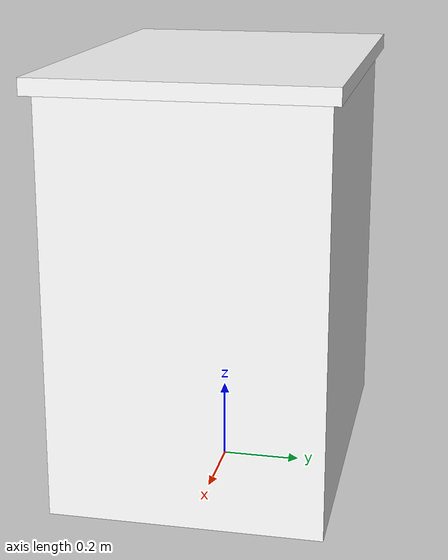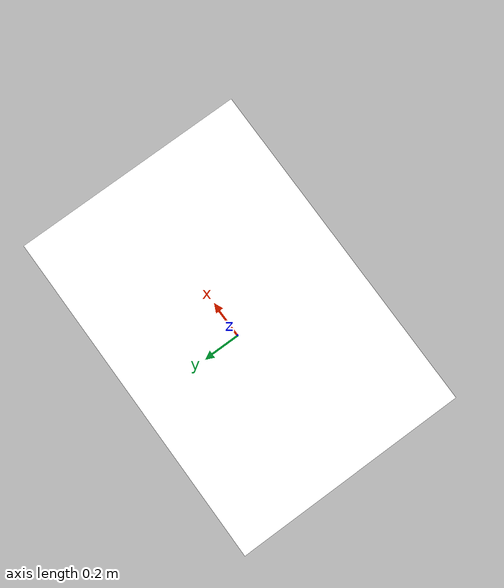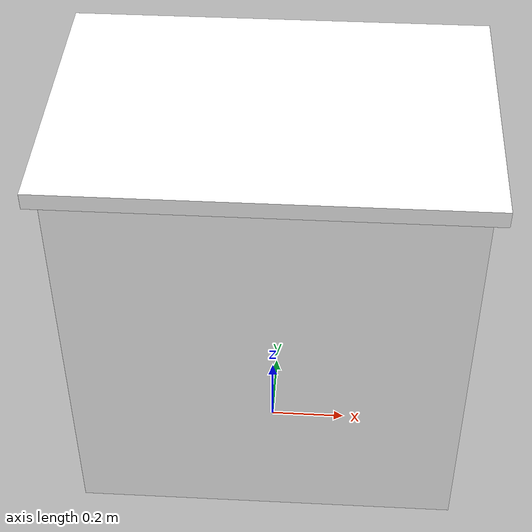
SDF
<?xml version="1.0"?>
<sdf version="1.9">
  <model name="dresser">
    <static>true</static>
    <link name="body">

      <collision name="dresser_collision">
        <pose>0 0 0.55 0 0 0</pose>
        <geometry><box><size>0.96 0.66 1.04</size></box></geometry>
      </collision>
      <collision name="top_cap_collision">
        <pose>0 0 1.06 0 0 0</pose>
        <geometry><box><size>1.02 0.70 0.04</size></box></geometry>
      </collision>
      <visual name="dresser_visual">
        <pose>0 0 0.55 0 0 0</pose>
        <geometry><box><size>0.96 0.66 1.04</size></box></geometry>
        <material>
          <ambient>1 1 1 1</ambient>
          <diffuse>1 1 1 1</diffuse>
          <specular>0.05 0.05 0.05 1</specular>
          <pbr>
            <metal>
              <albedo_map>materials/textures/wood_albedo.jpg</albedo_map>
              <normal_map>materials/textures/wood_normal.jpg</normal_map>
              <roughness_map>materials/textures/wood_roughness.jpg</roughness_map>
              <metalness>0.0</metalness>
            </metal>
          </pbr>
        </material>
      </visual>

      <visual name="top_cap">
        <pose>0 0 1.06 0 0 0</pose>
        <geometry><box><size>1.02 0.70 0.04</size></box></geometry>
        <material><ambient>1 1 1 1</ambient><diffuse>1 1 1 1</diffuse><specular>0.05 0.05 0.05 1</specular><pbr><metal><albedo_map>materials/textures/wood_albedo.jpg</albedo_map><normal_map>materials/textures/wood_normal.jpg</normal_map><roughness_map>materials/textures/wood_roughness.jpg</roughness_map><metalness>0.0</metalness></metal></pbr></material>
      </visual>

      <visual name="drawer_1">
        <pose>0.45 0 0.84 0 0 0</pose>
        <geometry><box><size>0.03 0.54 0.15</size></box></geometry>
        <material><ambient>1 1 1 1</ambient><diffuse>1 1 1 1</diffuse><specular>0.05 0.05 0.05 1</specular><pbr><metal><albedo_map>materials/textures/wood_albedo.jpg</albedo_map><normal_map>materials/textures/wood_normal.jpg</normal_map><roughness_map>materials/textures/wood_roughness.jpg</roughness_map><metalness>0.0</metalness></metal></pbr></material>
      </visual>
      <visual name="drawer_2">
        <pose>0.45 0 0.60 0 0 0</pose>
        <geometry><box><size>0.03 0.54 0.15</size></box></geometry>
        <material><ambient>1 1 1 1</ambient><diffuse>1 1 1 1</diffuse><specular>0.05 0.05 0.05 1</specular><pbr><metal><albedo_map>materials/textures/wood_albedo.jpg</albedo_map><normal_map>materials/textures/wood_normal.jpg</normal_map><roughness_map>materials/textures/wood_roughness.jpg</roughness_map><metalness>0.0</metalness></metal></pbr></material>
      </visual>
      <visual name="drawer_3">
        <pose>0.45 0 0.36 0 0 0</pose>
        <geometry><box><size>0.03 0.54 0.15</size></box></geometry>
        <material><ambient>1 1 1 1</ambient><diffuse>1 1 1 1</diffuse><specular>0.05 0.05 0.05 1</specular><pbr><metal><albedo_map>materials/textures/wood_albedo.jpg</albedo_map><normal_map>materials/textures/wood_normal.jpg</normal_map><roughness_map>materials/textures/wood_roughness.jpg</roughness_map><metalness>0.0</metalness></metal></pbr></material>
      </visual>
      <visual name="drawer_4">
        <pose>0.45 0 0.12 0 0 0</pose>
        <geometry><box><size>0.03 0.54 0.15</size></box></geometry>
        <material><ambient>1 1 1 1</ambient><diffuse>1 1 1 1</diffuse><specular>0.05 0.05 0.05 1</specular><pbr><metal><albedo_map>materials/textures/wood_albedo.jpg</albedo_map><normal_map>materials/textures/wood_normal.jpg</normal_map><roughness_map>materials/textures/wood_roughness.jpg</roughness_map><metalness>0.0</metalness></metal></pbr></material>
      </visual>

    </link>
  </model>
</sdf>
